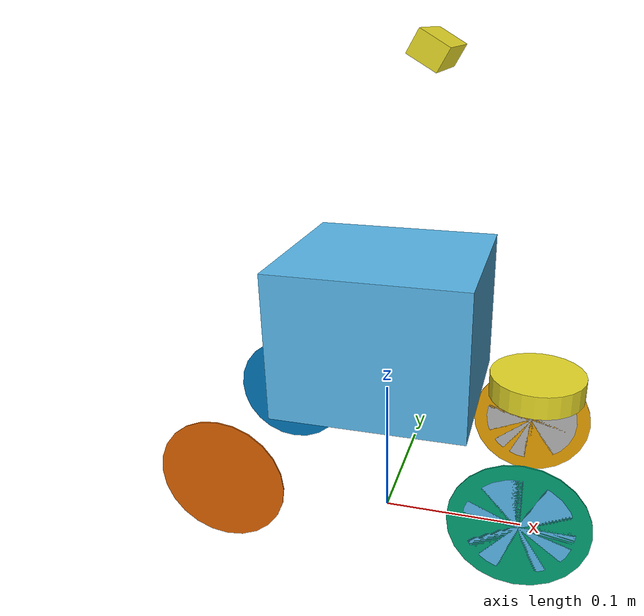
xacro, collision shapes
<?xml version="1.0"?>

<robot name="limo_four_acker" xmlns:xacro="http://ros.org/wiki/xacro">

    <xacro:include filename="$(find limo_description)/urdf/limo_xacro.xacro" />
    <xacro:include filename="$(find limo_description)/urdf/limo_steering_hinge.xacro" />

    <!-- Variables -->
    <xacro:property name="M_PI" value="3.14159"/>

    <!-- Vehicle Geometries -->
    <xacro:property name="base_x_size" value="0.13" />
    <xacro:property name="base_y_size" value="0.12" />
    <xacro:property name="base_z_size" value="0.1" />

    <xacro:property name="wheelbase" value="0.2"/>
    <xacro:property name="track" value="0.13"/>
    <xacro:property name="wheel_vertical_offset" value="-0.10" />
    <xacro:property name="base_mass" value="2.1557"/>

    <xacro:property name="wheel_length" value="0.001" />
    <xacro:property name="wheel_radius" value="0.045" />

    <!-- CAMERA POSE PROPERTIES -->
    <xacro:property name="cam_x" value="0.030" />
    <xacro:property name="cam_y" value="0.0" />
    <xacro:property name="cam_z" value="0.175" />
    <xacro:property name="cam_roll" value="0.0" />
    <xacro:property name="cam_pitch" value="0.5236" />
    <xacro:property name="cam_yaw" value="0.0" />

  <link name="base_footprint"/>

  <joint name="base_joint" type="fixed">
    <parent link="base_footprint"/>
    <child link="base_link"/>
    <origin xyz="0.0 0.0 0.15" rpy="0 0 0"/>
  </joint>
    <!-- Base link -->
    <link name="base_link">
        <visual>
            <origin xyz="0 0 -0.15" rpy="0 0 1.57" />
            <geometry>
                <mesh filename="package://limo_description/meshes/limo_optimal.dae" scale="1 1 1"/>
            </geometry>
        </visual>
        <collision>
            <origin xyz="0 0 0" rpy="0 0 0" />
          <geometry>
              <box size="${base_x_size} ${base_y_size} ${base_z_size}"/>
          </geometry>
        </collision>
    </link>

    <link name="inertial_link">
        <inertial>
            <origin xyz="0.0 0.0 0.0" />
            <mass value="${base_mass}" />
            <inertia ixx="0.0043832566666666675" ixy="0" ixz="0"
                     iyy="0.004832360833333334" iyz="0"
                     izz="0.005622784166666667" />
        </inertial>
    </link>

    <joint name="inertial_joint" type="fixed">
        <origin xyz="0 0 0" rpy="0 0 0" />
        <parent link="base_link" />
        <child link="inertial_link" />
    </joint>

    <xacro:limo_laser parent_prefix="base_link" frame_prefix="laser">
        <origin xyz="0.103 0 -0.034" rpy="0 0 0"/>
    </xacro:limo_laser>

    <xacro:limo_depth_camera parent_prefix="base_link" frame_prefix="depth_camera">
        <origin xyz="${cam_x} ${cam_y} ${cam_z}" rpy="${cam_roll} ${cam_pitch} ${cam_yaw}"/>
    </xacro:limo_depth_camera>

    <xacro:limo_imu parent_prefix="base_link" frame_prefix="imu">
        <origin xyz="0.0 0 -0.1" rpy="0 0 0"/>
    </xacro:limo_imu>

  <xacro:limo_left_steering_hinge parent_prefix="base_link" wheel_prefix="front_left">
    <origin xyz="${wheelbase/2} ${track/2} ${wheel_vertical_offset}" rpy="0 0  0" />
  </xacro:limo_left_steering_hinge>

  <xacro:limo_right_steering_hinge parent_prefix="base_link" wheel_prefix="front_right">
    <origin xyz="${wheelbase/2} ${-track/2} ${wheel_vertical_offset}" rpy="${M_PI} 0 0" />
  </xacro:limo_right_steering_hinge>

        <link name="main_steering_link">
            <inertial>
              <mass value="0.25" />
              <inertia ixx="0.00525" ixy="0" ixz="0" iyy="0.00035" iyz="0" izz="0.00525" />
              <origin xyz="0 0 0" />

            </inertial>
            <visual>
                <origin xyz="0 0 0" rpy="0 0 0" />
                <geometry>
                  <mesh filename="package://limo_description/meshes/steering.dae" scale="1 1 1"/>
                </geometry>
            </visual>

        </link>

        <joint name="main_steering" type="revolute">
            <parent link="base_link"/>
            <child link="main_steering_link"/>
            <origin xyz="${wheelbase/2} 0.0 ${wheel_vertical_offset * -2.0}" rpy="${M_PI} 0 0" />
            <axis xyz="0 0 -1" />
            <limit lower="-0.523598767" upper="0.523598767" effort="1000" velocity="10.0" />
            <dynamics damping="0.0" friction="0.0"/>
        </joint>

    <xacro:limo_wheel parent_prefix="base_link" wheel_prefix="rear_left" reflect="1" fixed_on="false">
        <origin xyz="${-wheelbase/2} ${track/2} ${wheel_vertical_offset}" rpy="0 0 0" />
    </xacro:limo_wheel>

    <xacro:limo_wheel parent_prefix="base_link" wheel_prefix="rear_right" reflect="-1" fixed_on="false">
        <origin xyz="${-wheelbase/2} ${-track/2} ${wheel_vertical_offset}" rpy="${M_PI} 0 0" />
    </xacro:limo_wheel>

<xacro:include filename="$(find limo_description)/urdf/limo_four_acker.gazebo" />

    <gazebo>
        <plugin filename="ignition-gazebo-ackermann-steering-system" name="gz::sim::systems::AckermannSteering">

        <left_joint>rear_left_wheel</left_joint>
        <right_joint>rear_right_wheel</right_joint>
        <left_steering_joint>front_left_steering</left_steering_joint>
        <right_steering_joint>front_right_steering</right_steering_joint>

        <kingpin_width>${track}</kingpin_width>
        <steering_limit>0.6458</steering_limit>
        <wheel_base>${wheelbase}</wheel_base>
        <wheel_separation>${track}</wheel_separation>
        <wheel_radius>${wheel_radius}</wheel_radius>

        <min_velocity>-20</min_velocity>
        <max_velocity>20</max_velocity>
        <min_acceleration>-3</min_acceleration>
        <max_acceleration>3</max_acceleration>

        <odom_topic>odom</odom_topic>
        <tf_topic>tf</tf_topic>
        <child_frame_id>base_footprint</child_frame_id>
        <odom_publish_frequency>50</odom_publish_frequency>

      </plugin>
    </gazebo>

    <gazebo>
      <plugin filename="ignition-gazebo-joint-state-publisher-system" name="gz::sim::systems::JointStatePublisher">
        <joint_name>front_left_steering</joint_name>
        <topic>front_left_steering_state</topic>
      </plugin>
    </gazebo>
    <gazebo>
      <plugin filename="ignition-gazebo-joint-position-controller-system" name="gz::sim::systems::JointPositionController">
        <joint_name>main_steering</joint_name>
        <topic>main_steering/cmd_pos</topic>
        <use_velocity_commands>true</use_velocity_commands>
        <cmd_max>5.0</cmd_max>
        <cmd_min>-5.0</cmd_min>
      </plugin>
    </gazebo>

    <gazebo reference="imu_link">
    <gravity>true</gravity>
    <sensor name="twr_imu" type="imu">
      <always_on>true</always_on>
      <update_rate>100</update_rate>
      <visualize>true</visualize>
      <topic>imu</topic>
      <imu>
        <orientation>
          <x>
            <noise type="gaussian">
              <mean>0.0</mean>
              <stddev>2e-3</stddev>
            </noise>
          </x>
          <y>
            <noise type="gaussian">
              <mean>0.0</mean>
              <stddev>2e-3</stddev>
            </noise>
          </y>
          <z>
            <noise type="gaussian">
              <mean>0.0</mean>
              <stddev>2e-3</stddev>
            </noise>
          </z>
        </orientation>
        <angular_velocity>
          <x>
            <noise type="gaussian">
              <mean>0.0</mean>
              <stddev>2e-4</stddev>
            </noise>
          </x>
          <y>
            <noise type="gaussian">
              <mean>0.0</mean>
              <stddev>2e-4</stddev>
            </noise>
          </y>
          <z>
            <noise type="gaussian">
              <mean>0.0</mean>
              <stddev>2e-4</stddev>
            </noise>
          </z>
        </angular_velocity>
        <linear_acceleration>
          <x>
            <noise type="gaussian">
              <mean>0.0</mean>
              <stddev>1.7e-2</stddev>
            </noise>
          </x>
          <y>
            <noise type="gaussian">
              <mean>0.0</mean>
              <stddev>1.7e-2</stddev>
            </noise>
          </y>
          <z>
            <noise type="gaussian">
              <mean>0.0</mean>
              <stddev>1.7e-2</stddev>
            </noise>
          </z>
        </linear_acceleration>
      </imu>
    </sensor>
</gazebo>

<gazebo reference="laser_link">
    <sensor name="laser" type="gpu_lidar">
      <always_on>true</always_on>
      <visualize>false</visualize>
      <update_rate>10</update_rate>
      <topic>scan</topic>
      <lidar>
        <scan>
          <horizontal>
            <samples>120</samples>
            <resolution>1.000000</resolution>
            <min_angle>-3.14159</min_angle>
            <max_angle>3.14159</max_angle>
          </horizontal>
        </scan>
        <range>
          <min>0.3</min>
          <max>15.0</max>
          <resolution>0.015</resolution>
        </range>
        <noise>
          <type>gaussian</type>
          <mean>0.0</mean>
          <stddev>0.01</stddev>
        </noise>
      </lidar>
    </sensor>
  </gazebo>

    <link name="camera_depth_optical_frame"/>

    <joint name="camera_depth_optical_joint" type="fixed">
      <origin xyz="0 0 0" rpy="${-M_PI/2} 0 ${-M_PI/2}" />
      <parent link="depth_camera_link" />
      <child link="camera_depth_optical_frame" />
    </joint>

    <gazebo reference="camera_depth_optical_joint">
      <preserveFixedJoint>true</preserveFixedJoint>
    </gazebo>

    <!-- gz-sim port; type="depth" -> type="rgbd_camera" (native color +
         depth + points + camera_info, no in-URDF plugin). -->
<gazebo reference="depth_camera_link">
          <sensor name="sensor_camera" type="rgbd_camera">
            <pose>0.0 0.0 0.0 0.0 0.0 0.0</pose>
            <always_on>1</always_on>
            <update_rate>10</update_rate>
            <visualize>1</visualize>
            <topic>limo_camera</topic>

            <camera name="limo_camera">
              <image>
                <format>R8G8B8</format>
                <width>400</width>
                <height>400</height>
              </image>
              <clip>
                <near>0.01</near>
                <far>10.0</far>
              </clip>
              <optical_frame_id>camera_depth_optical_frame</optical_frame_id>
            </camera>
        </sensor>
          </gazebo>

</robot>

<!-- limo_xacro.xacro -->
<robot name="limo_xacro" xmlns:xacro="http://ros.org/wiki/xacro">
    <xacro:macro name="limo_wheel" params="parent_prefix wheel_prefix reflect *joint_pose">
        <link name="${wheel_prefix}_wheel_link">
            <inertial>
                <origin xyz="0 0 0" />
                <mass value="0.5" />
                <inertia ixx="0.01055" ixy="0" ixz="0" iyy="0.00075" iyz="0" izz="0.01055" />
            </inertial>
            <visual>
                <origin xyz="0 0 0" rpy="0 0 0" />
                <geometry>
                    <mesh filename="package://limo_description/meshes/limo_wheel.dae" />
                </geometry>
            </visual>
            <collision>
              <origin xyz="0 ${wheel_length/2} 0" rpy="1.57 0 0" />
              <geometry>
                  <cylinder length="${wheel_length}" radius="${wheel_radius}" />
              </geometry>
            </collision>
        </link>

        <joint name="${wheel_prefix}_wheel" type="continuous">
            <parent link="${parent_prefix}"/>
            <child link="${wheel_prefix}_wheel_link"/>
            <xacro:insert_block name="joint_pose"/>
            <axis xyz="0 ${reflect*1} 0"/>
        </joint>
    </xacro:macro>

    <xacro:macro name="limo_laser" params="parent_prefix frame_prefix *joint_pose">
        <link name='${frame_prefix}_link'>
            <pose>0 0 0 0 0 0</pose>
            <inertial>
                <mass value="0.1"/>
                <origin xyz="0.0 0 0" rpy="0 0 0"/>
                <inertia
                    ixx="1e-6" ixy="0" ixz="0"
                    iyy="1e-6" iyz="0"
                    izz="1e-6"
                />
            </inertial>
            <visual name='laser_visual'>
                <origin xyz="0 0 0" rpy="0 0 0"/>
                <geometry>
                    <cylinder radius="0.02" length="0.01"/>
                </geometry>
                <material name='laser_material'>
                    <ambient>0.1 0.1 0.1 1</ambient>
                    <diffuse>0.1 0.1 0.2 1</diffuse>
                    <specular>0 0 0 0</specular>
                    <emissive>0 0 0 1</emissive>
                </material>
            </visual>
            <collision name='laser_collision'>
                <origin xyz="0 0 0" rpy="0 0 0"/>
                <geometry>
                    <cylinder radius="0.032" length="0.016"/>
                </geometry>
            </collision>
        </link>
        <joint type="fixed" name="laser_joint">
            <xacro:insert_block name="joint_pose"/>
            <child link="${frame_prefix}_link"/>
            <parent link="${parent_prefix}"/>
        </joint>
        <gazebo reference="${frame_prefix}_link">
            <material>Gazebo/Yellow</material>
        </gazebo>
    </xacro:macro>

    <xacro:macro name="limo_depth_camera" params="parent_prefix frame_prefix *joint_pose">
        <link name='${frame_prefix}_link'>
            <pose>0 0 0 0 0 0</pose>
            <inertial>
                <mass value="0.1"/>
                <origin xyz="0.0 0 0" rpy="0 0 0"/>
                <inertia
                    ixx="1e-6" ixy="0" ixz="0"
                    iyy="1e-6" iyz="0"
                    izz="1e-6"
                />
            </inertial>
            <visual name='depth_camera_visual'>
                <origin xyz="0 0 0" rpy="0 0 0"/>
                <geometry>
                    <box size="0.02 0.06 0.015"/>
                </geometry>
                <material name='depth_camera_material'>
                    <ambient>0.1 0.1 0.1 1</ambient>
                    <diffuse>0.1 0.1 0.2 1</diffuse>
                    <specular>0 0 0 0</specular>
                    <emissive>0 0 0 1</emissive>
                </material>
            </visual>
            <collision name='depth_camera_collision'>
                <origin xyz="0 0 0" rpy="0 0 0"/>
                <geometry>
                    <box size="0.02 0.06 0.015"/>
                </geometry>
            </collision>
        </link>

        <joint type="fixed" name="depth_camera_joint">
            <xacro:insert_block name="joint_pose"/>
            <child link="${frame_prefix}_link"/>
            <parent link="${parent_prefix}"/>
        </joint>
        <link name="depth_link"></link>

        <joint name="${frame_prefix}_to_camera_joint" type="fixed">
            <origin xyz="0 0 0" rpy="${-M_PI/2} 0 ${-M_PI/2} "/>
            <parent link="${frame_prefix}_link"/>
            <child link="depth_link"/>
          </joint>

        <gazebo reference="${frame_prefix}_link">
            <material>Gazebo/Yellow</material>
        </gazebo>
    </xacro:macro>

    <xacro:macro name="limo_imu" params="parent_prefix frame_prefix  *joint_pose">
        <link name='${frame_prefix}_link'>
            <pose>0 0 0 0 0 0</pose>
            <inertial>
                <mass value="0.01"/>
                <origin xyz="0.0 0 0" rpy="0 0 0"/>
                <inertia
                    ixx="1e-7" ixy="0" ixz="0"
                    iyy="1e-7" iyz="0"
                    izz="1e-7"
                />
            </inertial>
            <visual name='imu_visual'>
                <origin xyz="0 0 0" rpy="0 0 0"/>
                <geometry>
                    <box size="0.001 0.001 0.001"/>
                </geometry>
                <material name='imu_material'>
                    <ambient>0.1 0.1 0.1 1</ambient>
                    <diffuse>0.1 0.1 0.2 1</diffuse>
                    <specular>0 0 0 0</specular>
                    <emissive>0 0 0 1</emissive>
                </material>
            </visual>
            <collision name='imu_collision'>
                <origin xyz="0 0 0" rpy="0 0 0"/>
                <geometry>
                    <box size="0.001 0.001 0.001"/>
                </geometry>
            </collision>
        </link>
        <joint type="fixed" name="imu_joint">
            <xacro:insert_block name="joint_pose"/>
            <child link="${frame_prefix}_link"/>
            <parent link="${parent_prefix}"/>
        </joint>
        <gazebo reference="${frame_prefix}_link">
            <material>Gazebo/Yellow</material>
        </gazebo>
    </xacro:macro>
</robot>

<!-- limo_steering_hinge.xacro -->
<robot name="limo_steering_hinge" xmlns:xacro="http://ros.org/wiki/xacro">

    <xacro:macro name="limo_left_steering_hinge" params="parent_prefix wheel_prefix *joint_pose">
        <link name="${wheel_prefix}">
            <inertial>
              <mass value="0.25" />
              <inertia ixx="0.00525" ixy="0" ixz="0" iyy="0.00035" iyz="0" izz="0.00525" />
              <origin xyz="0 0 0" />

            </inertial>
            <visual>
                <origin xyz="0 0 0" rpy="0 0 0" />
                <geometry>
                  <cylinder length="0.0001" radius="0.0001" />
                </geometry>
            </visual>
            <collision>
              <origin xyz="0 ${wheel_length/2} 0" rpy="1.57 0 0" />
              <geometry>
                  <cylinder length="${wheel_length}" radius="${wheel_radius-0.01}" />
              </geometry>
            </collision>
        </link>

        <joint name="${wheel_prefix}_wheel" type="revolute">
            <parent link="${parent_prefix}"/>
            <child link="${wheel_prefix}"/>
            <xacro:insert_block name="joint_pose"/>
            <axis xyz="0 0 1" />
            <limit lower="-0.523598767" upper="0.523598767" effort="5" velocity="0.5" />
            <dynamics damping="1.0" friction="2.0"/>

        </joint>

        <link name="front_left_wheel_link">
          <inertial>
            <mass value="0.25" />
            <inertia ixx="0.00525" ixy="0" ixz="0" iyy="0.00035" iyz="0" izz="0.00525" />
            <origin xyz="0 0 0" />

          </inertial>
          <visual>
              <origin xyz="0 0 0" rpy="0 0 0" />
              <geometry>
                  <mesh filename="package://limo_description/meshes/limo_wheel.dae" />
              </geometry>
          </visual>
          <collision>
            <origin xyz="0 ${wheel_length/2} 0" rpy="1.57 0 0" />
            <geometry>
                <cylinder length="${wheel_length}" radius="${wheel_radius}" />
            </geometry>
          </collision>
      </link>

      <joint name="front_left_wheel" type="continuous">
          <parent link="${wheel_prefix}"/>
          <child link="front_left_wheel_link"/>
          <origin xyz="0 0 0" rpy="0 0  0" />
          <axis xyz="0 1 0"/>
      </joint>
    </xacro:macro>

    <xacro:macro name="limo_right_steering_hinge" params="parent_prefix wheel_prefix *joint_pose">
        <link name="${wheel_prefix}">
          <inertial>
            <mass value="0.25" />
            <inertia ixx="0.00525" ixy="0" ixz="0" iyy="0.00035" iyz="0" izz="0.00525" />
            <origin xyz="0 0 0" />

          </inertial>
            <visual>
                <origin xyz="0 0 0" rpy="0 0 0" />
                <geometry>
                  <cylinder length="0.0001" radius="0.0001" />
                </geometry>
            </visual>
            <collision>
              <origin xyz="0 ${wheel_length/2} 0" rpy="1.57 0 0" />
              <geometry>
                  <cylinder length="${wheel_length}" radius="${wheel_radius-0.01}" />
              </geometry>
            </collision>
        </link>

        <joint name="${wheel_prefix}_wheel" type="revolute">
            <parent link="${parent_prefix}"/>
            <child link="${wheel_prefix}"/>
            <xacro:insert_block name="joint_pose"/>
            <axis xyz="0 0 -1"/>
            <limit lower="-0.523598767" upper="0.523598767" effort="5" velocity="0.5" />
            <dynamics damping="1.0" friction="2.0"/>
        </joint>

        <link name="front_right_wheel_link">
          <inertial>
            <mass value="0.25" />
            <inertia ixx="0.00525" ixy="0" ixz="0" iyy="0.00035" iyz="0" izz="0.00525" />
            <origin xyz="0 0 0" />
          </inertial>
          <visual>
              <origin xyz="0 0 0" rpy="0 0 0" />
              <geometry>
                  <mesh filename="package://limo_description/meshes/limo_wheel.dae" />
              </geometry>
          </visual>
          <collision>
            <origin xyz="0 ${wheel_length/2} 0" rpy="1.57 0 0" />
            <geometry>
                <cylinder length="${wheel_length}" radius="${wheel_radius}" />
            </geometry>
          </collision>
      </link>

      <joint name="front_right_wheel" type="continuous">
          <parent link="${wheel_prefix}"/>
          <child link="front_right_wheel_link"/>
          <origin xyz="0 0 0" rpy="0 0  0" />
          <axis xyz="0 -1 0"/>
      </joint>
    </xacro:macro>
</robot>
